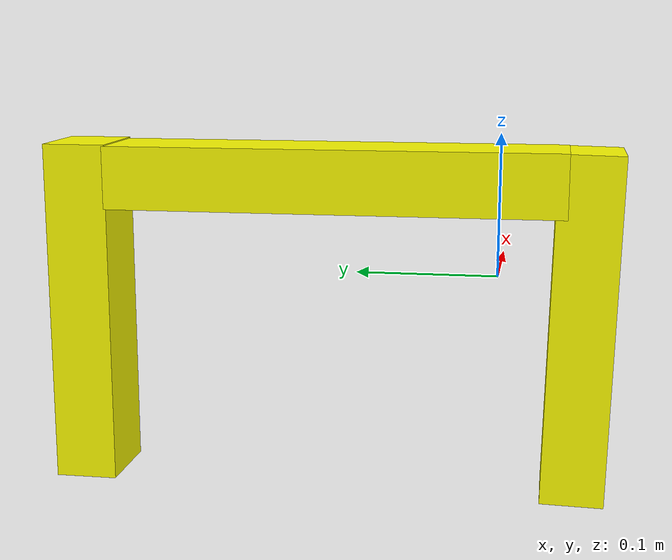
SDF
<?xml version='1.0'?>
<sdf version='1.7'>
  <model name='trave_3'>
   <link name='link_clone'>
      <inertial>
        <mass>0.05</mass>
        <inertia>
          <ixx>0.00026237</ixx>
          <ixy>0</ixy>
          <ixz>0</ixz>
          <iyy>0.00026976</iyy>
          <iyz>0</iyz>
          <izz>2.415e-05</izz>
        </inertia>
        <pose>0 0 0 0 -0 0</pose>
      </inertial>
      <self_collide>0</self_collide>
      <enable_wind>0</enable_wind>
      <kinematic>0</kinematic>
      <pose>0.003921 0.29924 -0.033189 0 -3e-06 -2.6e-05</pose>
      <gravity>1</gravity>
      <visual name='visual'>
        <geometry>
          <box>
            <size>0.061532 0.044841 0.246895</size>
          </box>
        </geometry>
        <material>
          <script>
            <name>Gazebo/Grey</name>
            <uri>file://media/materials/scripts/gazebo.material</uri>
          </script>
          <shader type='pixel'>
            <normal_map>__default__</normal_map>
          </shader>
          <ambient>1 1 0 0</ambient>
          <diffuse>1 1 0 1</diffuse>
          <specular>1 1 0 1</specular>
          <emissive>0 0 0 1</emissive>
        </material>
        <pose>0 0 0 0 -0 0</pose>
        <transparency>0</transparency>
        <cast_shadows>1</cast_shadows>
      </visual>
      <collision name='collision'>
        <laser_retro>0</laser_retro>
        <max_contacts>10</max_contacts>
        <pose>0 0 0 0 -0 0</pose>
        <geometry>
          <box>
            <size>0.061532 0.044841 0.246895</size>
          </box>
        </geometry>
        <surface>
          <friction>
            <ode>
              <mu>1</mu>
              <mu2>1</mu2>
              <fdir1>0 0 0</fdir1>
              <slip1>0</slip1>
              <slip2>0</slip2>
            </ode>
            <torsional>
              <coefficient>1</coefficient>
              <patch_radius>0</patch_radius>
              <surface_radius>0</surface_radius>
              <use_patch_radius>1</use_patch_radius>
              <ode>
                <slip>0</slip>
              </ode>
            </torsional>
          </friction>
          <bounce>
            <restitution_coefficient>0</restitution_coefficient>
            <threshold>1e+06</threshold>
          </bounce>
          <contact>
            <collide_without_contact>0</collide_without_contact>
            <collide_without_contact_bitmask>1</collide_without_contact_bitmask>
            <collide_bitmask>1</collide_bitmask>
            <ode>
              <soft_cfm>0</soft_cfm>
              <soft_erp>0.2</soft_erp>
              <kp>1e+13</kp>
              <kd>1</kd>
              <max_vel>0.01</max_vel>
              <min_depth>0</min_depth>
            </ode>
            <bullet>
              <split_impulse>1</split_impulse>
              <split_impulse_penetration_threshold>-0.01</split_impulse_penetration_threshold>
              <soft_cfm>0</soft_cfm>
              <soft_erp>0.2</soft_erp>
              <kp>1e+13</kp>
              <kd>1</kd>
            </bullet>
          </contact>
        </surface>
      </collision>
    </link>
    <link name='link_clone_0'>
      <inertial>
        <mass>0.02</mass>
        <inertia>
          <ixx>0.00017985</ixx>
          <ixy>0</ixy>
          <ixz>0</ixz>
          <iyy>0.00018281</iyy>
          <iyz>0</iyz>
          <izz>9.66e-06</izz>
        </inertia>
        <pose>0 0 0 0 -0 0</pose>
      </inertial>
      <self_collide>0</self_collide>
      <enable_wind>0</enable_wind>
      <kinematic>0</kinematic>
      <pose>0.003572 0.115777 0.067162 -1.57167 -3e-06 -2.6e-05</pose>
      <gravity>1</gravity>
      <visual name='visual'>
        <geometry>
          <box>
            <size>0.061532 0.044841 0.325421</size>
          </box>
        </geometry>
        <material>
          <script>
            <name>Gazebo/Grey</name>
            <uri>file://media/materials/scripts/gazebo.material</uri>
          </script>
          <shader type='pixel'>
            <normal_map>__default__</normal_map>
          </shader>
          <ambient>1 1 0 0</ambient>
          <diffuse>1 1 0 1</diffuse>
          <specular>1 1 0 1</specular>
          <emissive>0 0 0 1</emissive>
        </material>
        <pose>0 0 0 0 -0 0</pose>
        <transparency>0</transparency>
        <cast_shadows>1</cast_shadows>
      </visual>
      <collision name='collision'>
        <laser_retro>0</laser_retro>
        <max_contacts>10</max_contacts>
        <pose>0 0 0 0 -0 0</pose>
        <geometry>
          <box>
            <size>0.061532 0.044841 0.325421</size>
          </box>
        </geometry>
        <surface>
          <friction>
            <ode>
              <mu>1</mu>
              <mu2>1</mu2>
              <fdir1>0 0 0</fdir1>
              <slip1>0</slip1>
              <slip2>0</slip2>
            </ode>
            <torsional>
              <coefficient>1</coefficient>
              <patch_radius>0</patch_radius>
              <surface_radius>0</surface_radius>
              <use_patch_radius>1</use_patch_radius>
              <ode>
                <slip>0</slip>
              </ode>
            </torsional>
          </friction>
          <bounce>
            <restitution_coefficient>0</restitution_coefficient>
            <threshold>1e+06</threshold>
          </bounce>
          <contact>
            <collide_without_contact>0</collide_without_contact>
            <collide_without_contact_bitmask>1</collide_without_contact_bitmask>
            <collide_bitmask>1</collide_bitmask>
            <ode>
              <soft_cfm>0</soft_cfm>
              <soft_erp>0.2</soft_erp>
              <kp>1e+13</kp>
              <kd>1</kd>
              <max_vel>0.01</max_vel>
              <min_depth>0</min_depth>
            </ode>
            <bullet>
              <split_impulse>1</split_impulse>
              <split_impulse_penetration_threshold>-0.01</split_impulse_penetration_threshold>
              <soft_cfm>0</soft_cfm>
              <soft_erp>0.2</soft_erp>
              <kp>1e+13</kp>
              <kd>1</kd>
            </bullet>
          </contact>
        </surface>
      </collision>
    </link>
    <link name='link_clone_clone'>
      <inertial>
        <mass>0.05</mass>
        <inertia>
          <ixx>0.00026237</ixx>
          <ixy>0</ixy>
          <ixz>0</ixz>
          <iyy>0.00026976</iyy>
          <iyz>0</iyz>
          <izz>2.415e-05</izz>
        </inertia>
        <pose>0 0 0 0 -0 0</pose>
      </inertial>
      <self_collide>0</self_collide>
      <enable_wind>0</enable_wind>
      <kinematic>0</kinematic>
      <pose>0.004273 -0.059266 -0.034475 0.021558 -4.2e-05 0.001742</pose>
      <gravity>1</gravity>
      <visual name='visual'>
        <geometry>
          <box>
            <size>0.061532 0.044841 0.246895</size>
          </box>
        </geometry>
        <material>
          <script>
            <name>Gazebo/Grey</name>
            <uri>file://media/materials/scripts/gazebo.material</uri>
          </script>
          <shader type='pixel'>
            <normal_map>__default__</normal_map>
          </shader>
          <ambient>1 1 0 0</ambient>
          <diffuse>1 1 0 1</diffuse>
          <specular>1 1 0 1</specular>
          <emissive>0 0 0 1</emissive>
        </material>
        <pose>0 0 0 0 -0 0</pose>
        <transparency>0</transparency>
        <cast_shadows>1</cast_shadows>
      </visual>
      <collision name='collision'>
        <laser_retro>0</laser_retro>
        <max_contacts>10</max_contacts>
        <pose>0 0 0 0 -0 0</pose>
        <geometry>
          <box>
            <size>0.061532 0.044841 0.246895</size>
          </box>
        </geometry>
        <surface>
          <friction>
            <ode>
              <mu>1</mu>
              <mu2>1</mu2>
              <fdir1>0 0 0</fdir1>
              <slip1>0</slip1>
              <slip2>0</slip2>
            </ode>
            <torsional>
              <coefficient>1</coefficient>
              <patch_radius>0</patch_radius>
              <surface_radius>0</surface_radius>
              <use_patch_radius>1</use_patch_radius>
              <ode>
                <slip>0</slip>
              </ode>
            </torsional>
          </friction>
          <bounce>
            <restitution_coefficient>0</restitution_coefficient>
            <threshold>1e+06</threshold>
          </bounce>
          <contact>
            <collide_without_contact>0</collide_without_contact>
            <collide_without_contact_bitmask>1</collide_without_contact_bitmask>
            <collide_bitmask>1</collide_bitmask>
            <ode>
              <soft_cfm>0</soft_cfm>
              <soft_erp>0.2</soft_erp>
              <kp>1e+13</kp>
              <kd>1</kd>
              <max_vel>0.01</max_vel>
              <min_depth>0</min_depth>
            </ode>
            <bullet>
              <split_impulse>1</split_impulse>
              <split_impulse_penetration_threshold>-0.01</split_impulse_penetration_threshold>
              <soft_cfm>0</soft_cfm>
              <soft_erp>0.2</soft_erp>
              <kp>1e+13</kp>
              <kd>1</kd>
            </bullet>
          </contact>
        </surface>
      </collision>
    </link>
    <joint name='link_clone_0_JOINT_0' type='fixed'>
      <parent>link_clone_0</parent>
      <child>link_clone_clone</child>
      <pose>0 0 0 0 -0 0</pose>
      <physics>
        <ode>
          <limit>
            <cfm>0</cfm>
            <erp>0.2</erp>
          </limit>
          <suspension>
            <cfm>0</cfm>
            <erp>0.2</erp>
          </suspension>
        </ode>
      </physics>
    </joint>
    <joint name='link_clone_0_JOINT_1' type='fixed'>
      <parent>link_clone_0</parent>
      <child>link_clone</child>
      <pose>0 0 0 0 -0 0</pose>
      <physics>
        <ode>
          <limit>
            <cfm>0</cfm>
            <erp>0.2</erp>
          </limit>
          <suspension>
            <cfm>0</cfm>
            <erp>0.2</erp>
          </suspension>
        </ode>
      </physics>
    </joint>
    <static>0</static>
    <allow_auto_disable>1</allow_auto_disable>
  </model>
</sdf>
